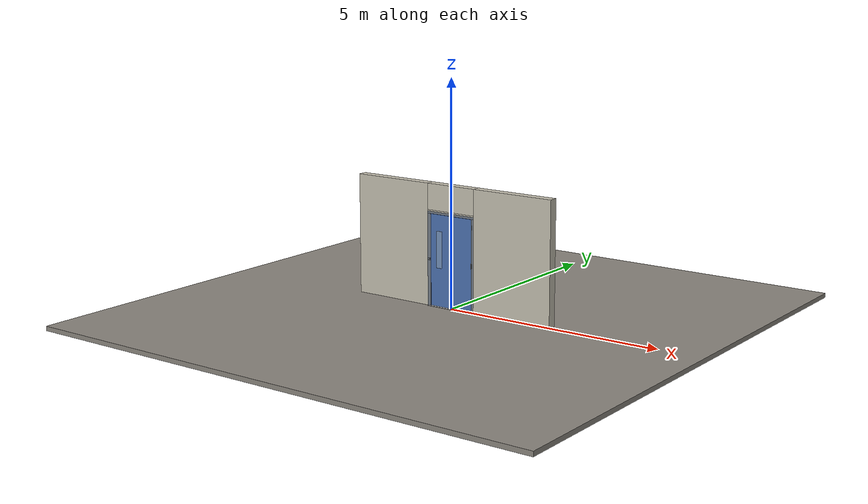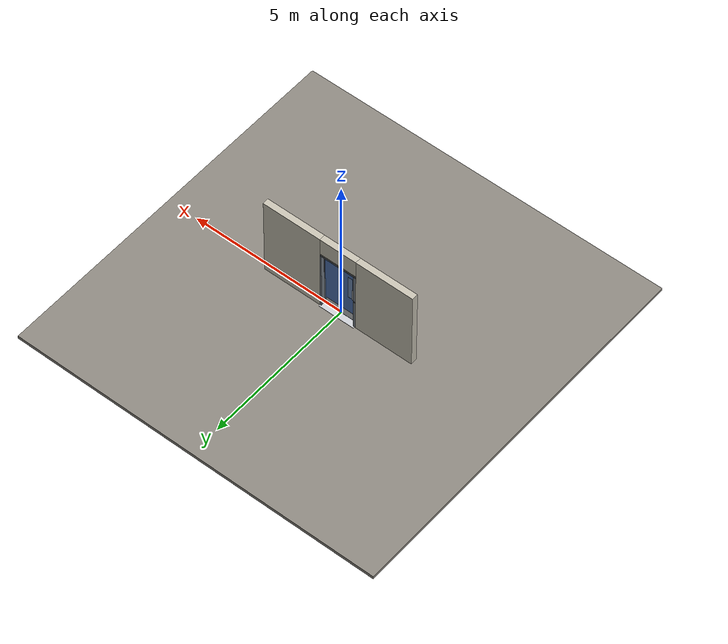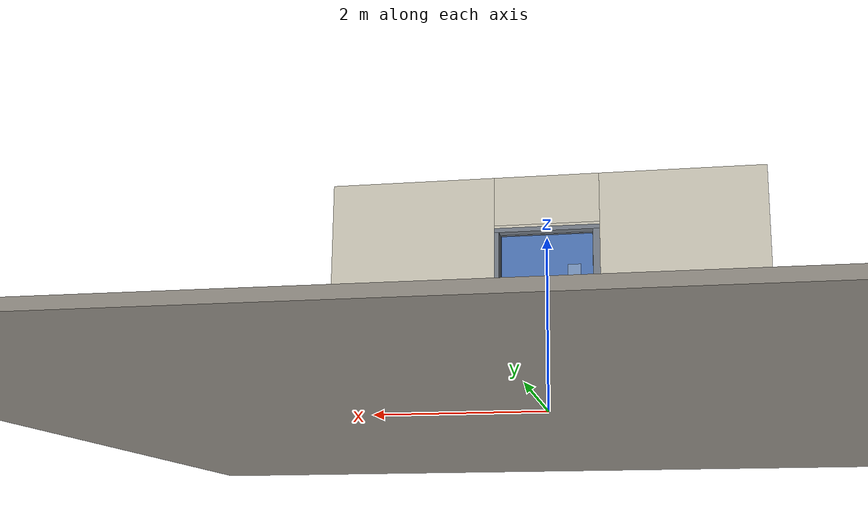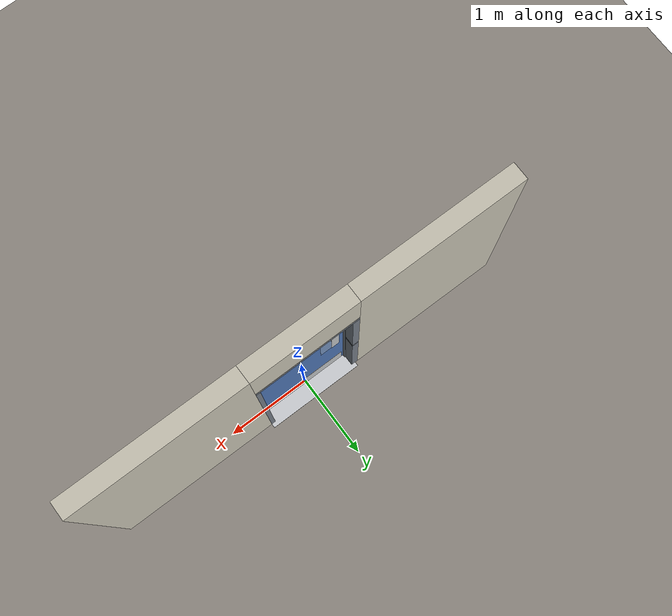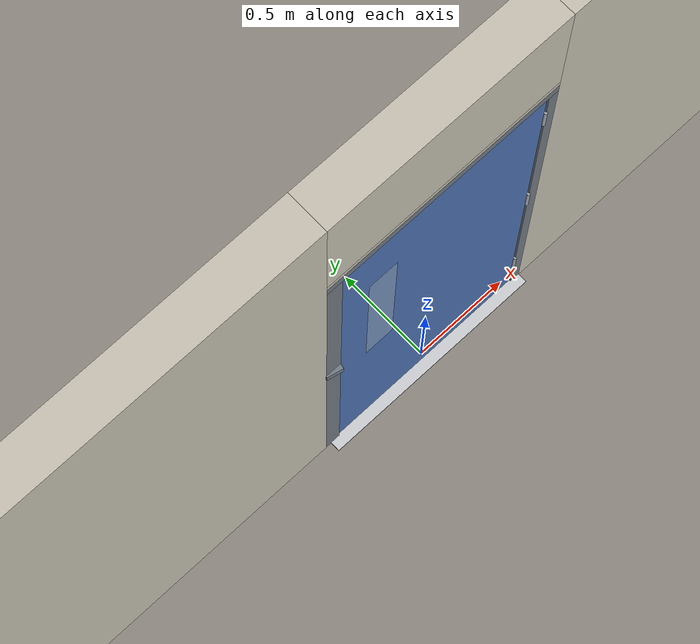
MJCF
<?xml version="1.0" ?>
<mujoco model="db0755_swing_single_simple">
  <compiler angle="radian" meshdir="../../hardware" texturedir="../../textures" autolimits="true" inertiafromgeom="false"/>
  <option timestep="0.002" integrator="implicitfast" cone="elliptic" impratio="10" noslip_iterations="3">
    <flag multiccd="enable"/>
  </option>
  <size memory="16M"/>
  <default>
    <geom condim="4" solref="0.005 1" solimp="0.95 0.99 0.001"/>
    <joint solreflimit="0.005 1" solimplimit="0.95 0.99 0.001"/>
    <tendon solreflimit="0.005 1"/>
    <equality solref="0.002 1"/>
  </default>
  <visual>
    <headlight ambient="0.4 0.4 0.4" diffuse="0.7 0.7 0.7" specular="0.2 0.2 0.2"/>
    <quality shadowsize="4096"/>
    <map znear="0.01" zfar="60"/>
  </visual>
  <asset>
    <mesh name="hinge_e22b26c0c1" file="hinge_e22b26c0c1.obj"/>
    <mesh name="hinge_jamb_e1d088f8dc" file="hinge_jamb_e1d088f8dc.obj"/>
    <material name="mat_floor" rgba="0.55 0.53 0.5 1" specular="0.2" shininess="0.15" reflectance="0"/>
    <material name="mat_wall" rgba="0.78 0.76 0.7 1" specular="0.2" shininess="0.1" reflectance="0"/>
    <material name="mat_leaf" rgba="0.3 0.45 0.7 1" specular="0.2" shininess="0.55" reflectance="0"/>
    <material name="mat_glass" rgba="0.8 0.85 0.85 0.35" specular="0.2" shininess="0.9" reflectance="0.1"/>
    <material name="mat_hinge" rgba="0.65 0.66 0.68 1" specular="0.74" shininess="0.5" reflectance="0.36"/>
    <material name="mat_op_stainless" rgba="0.75 0.76 0.77 1" specular="0.8" shininess="0.65" reflectance="0.4"/>
    <material name="mat_bolt" rgba="0.75 0.76 0.77 1" specular="0.8" shininess="0.65" reflectance="0.4"/>
    <material name="mat_frame" rgba="0.45 0.48 0.52 1" specular="0.32" shininess="0.6" reflectance="0.08"/>
    <material name="mat_threshold" rgba="0.8 0.81 0.83 1" specular="0.8" shininess="0.6" reflectance="0.4"/>
    <material name="mat_kick" rgba="0.75 0.76 0.77 1" specular="0.8" shininess="0.65" reflectance="0.4"/>
    <texture name="skybox" type="skybox" builtin="gradient" rgb1="0.6 0.7 0.85" rgb2="0.9 0.92 0.95" width="256" height="256"/>
  </asset>
  <worldbody>
    <light name="sun" pos="1.5 -2.5 4" dir="-0.3 0.5 -0.8" directional="true" diffuse="0.8 0.8 0.8" specular="0.3 0.3 0.3" castshadow="true"/>
    <light name="fill" pos="-1.5 2.5 3" dir="0.3 -0.5 -0.7" directional="true" diffuse="0.35 0.35 0.4" castshadow="false"/>
    <camera name="robot_view" pos="0 -2.471187 1.734312" xyaxes="1 0 0 0 0.26963 0.962964" fovy="52"/>
    <camera name="far_view" pos="0 2.613187 1.734312" xyaxes="-1 0 0 0 -0.26963 0.962964" fovy="52"/>
    <camera name="iso" pos="-1.932062 -2.064437 2.141063" xyaxes="0.741536 -0.670913 0 0.242917 0.268487 0.932151" fovy="46"/>
    <camera name="detail_handle" pos="-0.25 -0.729 1.32" xyaxes="0.97561 0.219512 0 -0.070934 0.315262 0.94635" fovy="38"/>
    <geom name="floor" type="box" size="6 6 0.05" pos="0 0 -0.05" material="mat_floor" group="0" contype="1" conaffinity="1" friction="0.8 0.005 0.0001" density="2400"/>
    <geom name="wall_left" type="box" size="0.9415 0.1 1.35" pos="-1.5585 0.071 1.35" material="mat_wall" group="0" contype="1" conaffinity="1" friction="0.6 0.005 0.0001" density="800"/>
    <geom name="wall_right" type="box" size="0.9565 0.1 1.35" pos="1.5435 0.071 1.35" material="mat_wall" group="0" contype="1" conaffinity="1" friction="0.6 0.005 0.0001" density="800"/>
    <geom name="wall_header" type="box" size="0.602 0.1 0.2875" pos="-0.015 0.071 2.4125" material="mat_wall" group="0" contype="1" conaffinity="1" friction="0.6 0.005 0.0001" density="800"/>
    <geom name="hinge_0_jamb" type="mesh" mesh="hinge_jamb_e1d088f8dc" pos="0.534 -0.029 0.259" quat="0 0 1 0" material="mat_hinge" group="1" contype="0" conaffinity="0" density="7850"/>
    <geom name="hinge_1_jamb" type="mesh" mesh="hinge_jamb_e1d088f8dc" pos="0.534 -0.029 1.025" quat="0 0 1 0" material="mat_hinge" group="1" contype="0" conaffinity="0" density="7850"/>
    <geom name="hinge_2_jamb" type="mesh" mesh="hinge_jamb_e1d088f8dc" pos="0.534 -0.029 1.861" quat="0 0 1 0" material="mat_hinge" group="1" contype="0" conaffinity="0" density="7850"/>
    <geom name="jamb_hinge" type="box" size="0.025 0.1 1.0225" pos="0.562 0.071 1.0225" material="mat_frame" group="0" contype="1" conaffinity="1" friction="0.6 0.005 0.0001" density="300"/>
    <geom name="strike_1040_wall_n" type="box" size="0.04 0.08175 0.019" pos="-0.577 0.08925 1.04" material="mat_frame" group="0" contype="1" conaffinity="1" friction="0.6 0.005 0.0001" density="300"/>
    <geom name="strike_1040_wall_p" type="box" size="0.04 0.008 0.019" pos="-0.577 -0.0155 1.04" material="mat_frame" group="0" contype="1" conaffinity="1" friction="0.6 0.005 0.0001" density="300"/>
    <geom name="strike_1040_ramp" type="box" size="0.04 0.015403 0.019" pos="-0.579454 -0.029411 1.04" quat="0.993439 0 0 -0.114365" material="mat_frame" group="0" contype="1" conaffinity="1" friction="0.12 0.005 0.0001" density="300"/>
    <geom name="strike_1040_ramp_n" type="box" size="0.04 0.015403 0.019" pos="-0.579454 0.017411 1.04" quat="0.993439 0 0 0.114365" material="mat_frame" group="0" contype="1" conaffinity="1" friction="0.12 0.005 0.0001" density="300"/>
    <geom name="strike_1040_back" type="box" size="0.035 0.0075 0.019" pos="-0.582 0 1.04" material="mat_frame" group="0" contype="1" conaffinity="1" friction="0.6 0.005 0.0001" density="300"/>
    <geom name="jamb_strike_0" type="box" size="0.04 0.1 0.5105" pos="-0.577 0.071 0.5105" material="mat_frame" group="0" contype="1" conaffinity="1" friction="0.6 0.005 0.0001" density="300"/>
    <geom name="jamb_strike_1" type="box" size="0.04 0.1 0.493" pos="-0.577 0.071 1.552" material="mat_frame" group="0" contype="1" conaffinity="1" friction="0.6 0.005 0.0001" density="300"/>
    <geom name="jamb_head" type="box" size="0.602 0.1 0.025" pos="-0.015 0.071 2.07" material="mat_frame" group="0" contype="1" conaffinity="1" friction="0.6 0.005 0.0001" density="300"/>
    <geom name="head_stud" type="box" size="0.602 0.1 0.015" pos="-0.015 0.071 2.11" material="mat_wall" group="0" contype="1" conaffinity="1" friction="0.6 0.005 0.0001" density="500"/>
    <geom name="stop_hinge" type="box" size="0.0055 0.016 1.0225" pos="0.5315 0.0385 1.0225" material="mat_frame" group="0" contype="1" conaffinity="1" friction="0.6 0.005 0.0001" density="300"/>
    <geom name="stop_strike" type="box" size="0.0055 0.016 1.0225" pos="-0.5315 0.0385 1.0225" material="mat_frame" group="0" contype="1" conaffinity="1" friction="0.6 0.005 0.0001" density="300"/>
    <geom name="stop_head" type="box" size="0.537 0.016 0.0055" pos="0 0.0385 2.0395" material="mat_frame" group="0" contype="1" conaffinity="1" friction="0.6 0.005 0.0001" density="300"/>
    <geom name="threshold" type="box" size="0.587 0.15 0.004" pos="0 0.071 0.004" material="mat_threshold" group="0" contype="1" conaffinity="1" friction="0.6 0.005 0.0001" density="2700"/>
    <site name="approach_point" pos="0 -1.5 0" quat="1 0 0 0" size="0.05" rgba="0.2 0.9 0.2 0.5" group="4"/>
    <site name="goal_point" pos="0 1.5 0" quat="1 0 0 0" size="0.05" rgba="0.2 0.9 0.2 0.5" group="4"/>
    <site name="door_plane_center" pos="0 0 1.0225" quat="1 0 0 0" size="0.02" rgba="0.2 0.9 0.2 0.5" group="4"/>
    <body name="leaf" pos="0.537 0 0">
      <inertial pos="-0.534178 0.000986 0.986499" mass="72.156204" quat="-0.499995 -0.500316 0.500862 -0.498825" diaginertia="7.008294467 26.019145936 33.001406711"/>
      <joint name="leaf_hinge" type="hinge" axis="0 0 1" pos="-0.003 -0.029 0" limited="true" range="0 1.832596" damping="0.525663" frictionloss="0.886409" armature="0.02"/>
      <geom name="leaf_slab" type="box" size="0.5335 0.022 1.016" pos="-0.5365 0 1.025" material="mat_leaf" group="0" contype="1" conaffinity="1" friction="0.35 0.005 0.0001" density="1"/>
      <geom name="leaf_glass_0" type="box" size="0.075 0.0228 0.4064" pos="-0.84763 0 1.26884" material="mat_glass" group="1" contype="0" conaffinity="0" density="1"/>
      <geom name="hinge_0" type="mesh" mesh="hinge_e22b26c0c1" pos="-0.003 -0.029 0.259" quat="0 0 1 0" material="mat_hinge" group="1" contype="0" conaffinity="0" density="7850"/>
      <geom name="hinge_1" type="mesh" mesh="hinge_e22b26c0c1" pos="-0.003 -0.029 1.025" quat="0 0 1 0" material="mat_hinge" group="1" contype="0" conaffinity="0" density="7850"/>
      <geom name="hinge_2" type="mesh" mesh="hinge_e22b26c0c1" pos="-0.003 -0.029 1.861" quat="0 0 1 0" material="mat_hinge" group="1" contype="0" conaffinity="0" density="7850"/>
      <geom name="leaf_push_plate_p" type="box" size="0.05 0.0008 0.2" pos="-0.965 0.0228 1.04" material="mat_op_stainless" group="1" contype="0" conaffinity="0" density="7900"/>
      <geom name="kick_plate_p" type="box" size="0.5035 0.0008 0.125" pos="-0.5365 0.0228 0.144" material="mat_kick" group="2" contype="0" conaffinity="0" density="7900"/>
      <site name="leaf_push_plate_push_p" pos="-0.965 0.022 1.04" quat="1 0 0 0" size="0.012" rgba="0.2 0.9 0.2 0.5" group="4"/>
      <site name="leaf_edge_mid" pos="-1.07 0 1.016" quat="1 0 0 0" size="0.02" rgba="0.2 0.9 0.2 0.5" group="4"/>
      <body name="leaf_latch_bolt" pos="-1.07 0 1.04">
        <inertial pos="0.012 0 0" mass="0.030762" quat="0 0 -0.707107 0.707107" diaginertia="0.000000526 0.000002949 0.000002949"/>
        <joint name="leaf_latch_bolt_slide" type="slide" axis="1 0 0" limited="true" range="0 0.006" damping="2" frictionloss="0.3" stiffness="3000" springref="-0.004" armature="0.1"/>
        <geom name="leaf_latch_bolt_capsule" type="capsule" size="0.006 0.012" pos="0.012 0 0" quat="0.707107 0 -0.707107 0" material="mat_bolt" group="0" contype="1" conaffinity="1" friction="0.2 0.005 0.0001" density="8500"/>
      </body>
    </body>
  </worldbody>
  <sensor>
    <jointpos name="leaf_hinge_pos" joint="leaf_hinge"/>
    <jointvel name="leaf_hinge_vel" joint="leaf_hinge"/>
    <jointpos name="leaf_latch_bolt_slide_pos" joint="leaf_latch_bolt_slide"/>
    <jointvel name="leaf_latch_bolt_slide_vel" joint="leaf_latch_bolt_slide"/>
  </sensor>
</mujoco>
